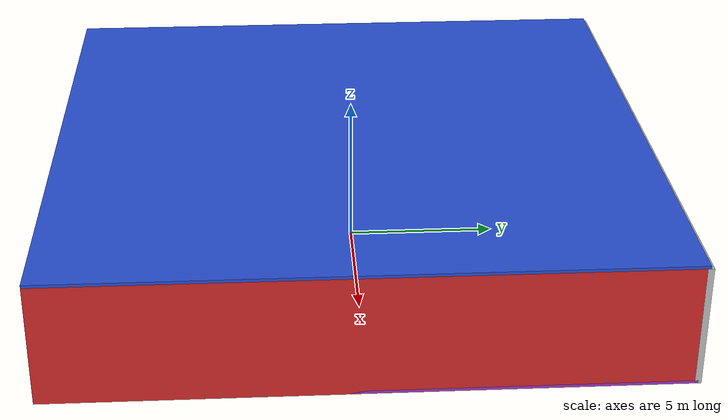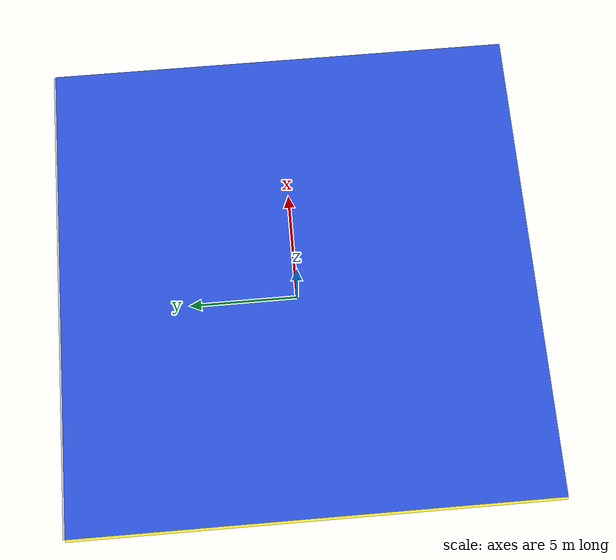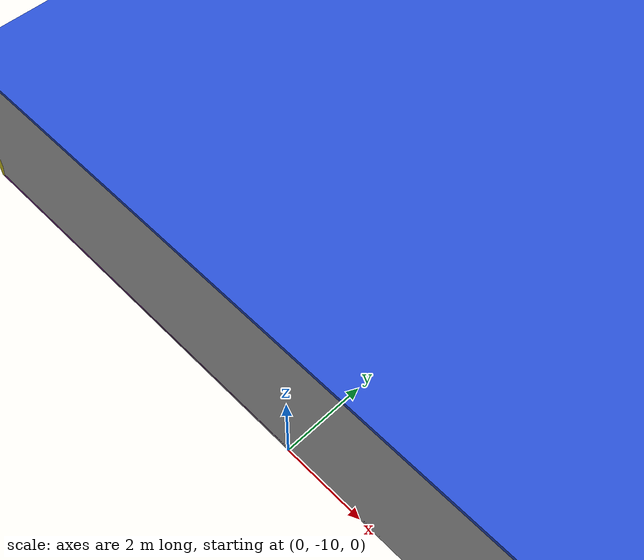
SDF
<sdf version="1.4">
 <world name="default">
  <physics type="ode">
   <max_step_size>0.001</max_step_size>
   <real_time_factor>1</real_time_factor>
   <real_time_update_rate>1000</real_time_update_rate>
   <gravity>0 0 -9.8</gravity>
  </physics>
  <scene><ambient>0.4 0.4 0.4 1</ambient><background>0.7 0.7 0.7 1</background><shadows>1</shadows></scene>
  <model name="Surrounding">
   <static>1</static>
   <link name="Ceiling">
    <collision name="Ceiling_Collision"><geometry><box><size>20 20 0.1</size></box></geometry></collision>
    <visual name="Ceiling_Visual">
     <geometry><box><size>20 20 0.1</size></box></geometry>
     <material>
      <script><uri>file://media/materials/scripts/gazebo.material</uri><name>Gazebo/Blue</name></script>
     </material>
    </visual>
    <pose>0 0 4.05 0 0 0</pose>
   </link>
   <link name="Wall_South">
    <collision name="Wall_South_Collision">
     <geometry><box><size>20 0 4</size></box></geometry>
     <pose>0 0 2 0 -0 0</pose>
    </collision>
    <visual name="Wall_South_Visual">
     <pose>0 0 2 0 -0 0</pose>
     <geometry><box><size>20 0 4</size></box></geometry>
     <material>
      <script><uri>file://media/materials/scripts/gazebo.material</uri><name>Gazebo/JointAnchor</name></script>
     </material>
    </visual>
    <velocity_decay><linear>0</linear><angular>0</angular></velocity_decay>
    <pose>0 -10 0 0 -0 0</pose>
   </link>
   <link name="Wall_East">
    <collision name="Wall_21_Collision">
     <geometry><box><size>20 0 4</size></box></geometry>
     <pose>0 0 2 0 -0 0</pose>
    </collision>
    <visual name="Wall_21_Visual">
     <pose>0 0 2 0 -0 0</pose>
     <geometry><box><size>20 0 4</size></box></geometry>
     <material>
      <script><uri>file://media/materials/scripts/gazebo.material</uri><name>Gazebo/Red</name></script>
     </material>
    </visual>
    <velocity_decay><linear>0</linear><angular>0</angular></velocity_decay>
    <pose>10 0 0 0 -0 1.5708</pose>
   </link>
   <link name="Wall_North">
    <collision name="Wall_22_Collision">
     <geometry><box><size>20 0.2 4</size></box></geometry>
     <pose>0 0 2 0 -0 0</pose>
    </collision>
    <visual name="Wall_22_Visual">
     <pose>0 0 2 0 -0 0</pose>
     <geometry><box><size>20 0.2 4</size></box></geometry>
     <material>
      <script><uri>file://media/materials/scripts/gazebo.material</uri><name>Gazebo/PioneerBody</name></script>
     </material>
    </visual>
    <velocity_decay><linear>0</linear><angular>0</angular></velocity_decay>
    <pose>0 10 0 0 -0 0</pose>
   </link>
   <link name="Wall_West">
    <collision name="Wall_23_Collision">
     <geometry><box><size>20 0.2 4</size></box></geometry>
     <pose>0 0 2 0 -0 0</pose>
    </collision>
    <visual name="Wall_23_Visual">
     <pose>0 0 2 0 -0 0</pose>
     <geometry><box><size>20 0.2 4</size></box></geometry>
     <material>
      <script><uri>file://media/materials/scripts/gazebo.material</uri><name>Gazebo/YellowGlow</name></script>
     </material>
    </visual>
    <velocity_decay><linear>0</linear><angular>0</angular></velocity_decay>
    <pose>-10 0 0 0 0 -1.5708</pose>
   </link>
   <link name="Ground_link">
    <collision name="collision">
     <pose>0 0 .05 0 -0 0</pose>
     <geometry><box><size>20 20 0.1</size></box></geometry>
    </collision>
    <visual name="visual">
     <pose>0 0 .05 0 -0 0</pose>
     <geometry><box><size>20 20 0.1</size></box></geometry>
     <material>
      <script><uri>file://media/materials/scripts/gazebo.material</uri><name>Gazebo/Purple</name></script>
     </material>
    </visual>
   </link>
   <static>1</static>
  </model>
  <spherical_coordinates>
   <surface_model>EARTH_WGS84</surface_model>
   <latitude_deg>0</latitude_deg>
   <longitude_deg>0</longitude_deg>
   <elevation>0</elevation>
   <heading_deg>0</heading_deg>
  </spherical_coordinates>
  <light name="lightball_0" type="diffuse">
   <diffuse>0.8 0.8 0.8 1</diffuse>
   <specular>0.2 0.2 0.2 1</specular>
   <attenuation>
    <range>100</range>
    <constant>0.7</constant>
    <linear>0.01</linear>
    <quadratic>0.001</quadratic>
   </attenuation>
   <direction>-0.5 0.1 -0.9</direction>
   <pose>3.80107168451 -0.162048407361 1.80444969715 0 0 0</pose>
  </light>
  <light name="lightball_1" type="diffuse">
   <diffuse>0.8 0.8 0.8 1</diffuse>
   <specular>0.2 0.2 0.2 1</specular>
   <attenuation>
    <range>100</range>
    <constant>0.7</constant>
    <linear>0.01</linear>
    <quadratic>0.001</quadratic>
   </attenuation>
   <direction>-0.5 0.1 -0.9</direction>
   <pose>-5.61555441083 -4.20380139248 0.566361767636 0 0 0</pose>
  </light>
  <include>
   <uri>model://textured_shapes</uri>
   <pose>-4.91942808899 -4.87937796677 0 0 0 0.987253208736</pose>
  </include>
  <include><uri>model://cabinet</uri><pose>-3.6617627007 8.68471054367 0 0 0 1.60837873253</pose></include>
  <include><uri>model://cabinet</uri><pose>0.350792884898 -7.4852097368 0 0 0 0.663055645564</pose></include>
  <include><uri>model://cabinet</uri><pose>2.07051878605 -3.70308493716 0 0 0 2.64373936656</pose></include>
  <include><uri>model://cabinet</uri><pose>1.20393809069 1.53283652442 0 0 0 1.9765526274</pose></include>
  <include><uri>model://cabinet</uri><pose>3.99951743458 4.52972015411 0 0 0 2.00726174526</pose></include>
  <include>
   <uri>model://construction_cone</uri>
   <pose>7.79765882611 6.83352081956 0 0 0 1.9668242456</pose>
  </include>
 </world>
</sdf>

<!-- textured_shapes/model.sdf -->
<sdf version="1.6">
  <model name="textured_shapes">
    <pose>0 0 0.5 0 0 0</pose>
    <link name="box">
      <pose>0 -1.5 0 0 0 0</pose>
      <collision name="collision">
        <geometry>
          <box>
            <size>1 1 1</size>
          </box>
        </geometry>
      </collision>
      <visual name="visual">
        <geometry>
          <box>
            <size>1 1 1</size>
          </box>
        </geometry>
        <material>
          <script>
            <uri>model://../model_source/models/textured_shapes/materials/scripts</uri>
            <uri>model://../model_source/models/textured_shapes/materials/textures</uri>
            <name>TexturedShape/Squares</name>
          </script>
        </material>
      </visual>
    </link>
    <link name="sphere">
      <collision name="collision">
        <geometry>
          <sphere>
            <radius>0.5</radius>
          </sphere>
        </geometry>
      </collision>
      <visual name="visual">
        <geometry>
          <sphere>
            <radius>0.5</radius>
          </sphere>
        </geometry>
        <material>
          <script>
            <uri>model://../model_source/models/textured_shapes/materials/scripts</uri>
            <uri>model://../model_source/models/textured_shapes/materials/textures</uri>
            <name>TexturedShape/Squares</name>
          </script>
        </material>
      </visual>
    </link>
    <link name="cylinder">
      <pose>0 1.5 0 0 0 0</pose>
      <collision name="collision">
        <geometry>
          <cylinder>
            <radius>0.5</radius>
            <length>1</length>
          </cylinder>
        </geometry>
      </collision>
      <visual name="visual">
        <geometry>
          <cylinder>
            <radius>0.5</radius>
            <length>1</length>
          </cylinder>
        </geometry>
        <material>
          <script>
            <uri>model://../model_source/models/textured_shapes/materials/scripts</uri>
            <uri>model://../model_source/models/textured_shapes/materials/textures</uri>
            <name>TexturedShape/Squares</name>
          </script>
        </material>
      </visual>
    </link>
  </model>
</sdf>

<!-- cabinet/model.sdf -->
<sdf version="1.5">
  <model name="cabinet">
    <static>true</static>
    <link name="cabinet_bottom_plate">
      <inertial>
        <pose>0 0 -1 0 0 0</pose>
        <inertia>
          <ixx>2.050000</ixx>
          <ixy>0</ixy>
          <ixz>0</ixz>
          <iyy>2.050000</iyy>
          <iyz>0</iyz>
          <izz>2.050000</izz>
        </inertia>
        <mass>25.000000</mass>
      </inertial>
      <collision name="cabinet_bottom_plate_geom">
        <pose>0 0 0.010000 0 0 0</pose>
        <geometry>
          <box>
            <size>0.450000 0.450000 0.020000</size>
          </box>
        </geometry>
      </collision>
      <visual name="cabinet_bottom_plate_geom_visual">
        <pose>0 0 0.010000 0 0 0</pose>
        <geometry>
          <box>
            <size>0.450000 0.450000 0.020000</size>
          </box>
        </geometry>
        <material>
          <script>
            <uri>model://media/materials/scripts/gazebo.material</uri>
            <name>Gazebo/Wood</name>
          </script>
        </material>
      </visual>
      <collision name="cabinet_bottom_plate_geom_cabinet_back_plate">
        <pose>0.235000 0 0.510000 0 0 0</pose>
        <geometry>
          <box>
            <size>0.020000 0.450000 1.020000</size>
          </box>
        </geometry>
      </collision>
      <visual name="cabinet_bottom_plate_geom_cabinet_back_plate_visual">
        <pose>0.235000 0 0.510000 0 0 0</pose>
        <geometry>
          <box>
            <size>0.020000 0.450000 1.020000</size>
          </box>
        </geometry>
        <material>
          <script>
            <uri>model://media/materials/scripts/gazebo.material</uri>
            <name>Gazebo/Wood</name>
          </script>
        </material>
      </visual>
      <collision name="cabinet_bottom_plate_geom_cabinet_left_plate">
        <pose>0 0.235000 0.510000 0 0 0</pose>
        <geometry>
          <box>
            <size>0.450000 0.020000 1.020000</size>
          </box>
        </geometry>
      </collision>
      <visual name="cabinet_bottom_plate_geom_cabinet_left_plate_visual">
        <pose>0 0.235000 0.510000 0 0 0</pose>
        <geometry>
          <box>
            <size>0.450000 0.020000 1.020000</size>
          </box>
        </geometry>
        <material>
          <script>
            <uri>model://media/materials/scripts/gazebo.material</uri>
            <name>Gazebo/Wood</name>
          </script>
        </material>
      </visual>
      <collision name="cabinet_bottom_plate_geom_cabinet_middle_plate">
        <pose>0 0 0.510000 0 0 0</pose>
        <geometry>
          <box>
            <size>0.450000 0.450000 0.020000</size>
          </box>
        </geometry>
      </collision>
      <visual name="cabinet_bottom_plate_geom_cabinet_middle_plate_visual">
        <pose>0 0 0.510000 0 0 0</pose>
        <geometry>
          <box>
            <size>0.450000 0.450000 0.020000</size>
          </box>
        </geometry>
        <material>
          <script>
            <uri>model://media/materials/scripts/gazebo.material</uri>
            <name>Gazebo/Wood</name>
          </script>
        </material>
      </visual>
      <collision name="cabinet_bottom_plate_geom_cabinet_right_plate">
        <pose>0 -0.235000 0.510000 0 0 0</pose>
        <geometry>
          <box>
            <size>0.450000 0.020000 1.020000</size>
          </box>
        </geometry>
      </collision>
      <visual name="cabinet_bottom_plate_geom_cabinet_right_plate_visual">
        <pose>0 -0.235000 0.510000 0 0 0</pose>
        <geometry>
          <box>
            <size>0.450000 0.020000 1.020000</size>
          </box>
        </geometry>
        <material>
          <script>
            <uri>model://media/materials/scripts/gazebo.material</uri>
            <name>Gazebo/Wood</name>
          </script>
        </material>
      </visual>
      <collision name="cabinet_bottom_plate_geom_cabinet_top_plate">
        <pose>0 0 1.010000 0 0 0</pose>
        <geometry>
          <box>
            <size>0.450000 0.450000 0.020000</size>
          </box>
        </geometry>
      </collision>
      <visual name="cabinet_bottom_plate_geom_cabinet_top_plate_visual">
        <pose>0 0 1.010000 0 0 0</pose>
        <geometry>
          <box>
            <size>0.450000 0.450000 0.020000</size>
          </box>
        </geometry>
        <material>
          <script>
            <uri>model://media/materials/scripts/gazebo.material</uri>
            <name>Gazebo/Wood</name>
          </script>
        </material>
      </visual>
    </link>
  </model>
</sdf>

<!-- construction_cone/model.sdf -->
<sdf version="1.5">
  <model name="Construction Cone">
    <link name="link">
      <collision name="collision">
        <geometry>
          <mesh>
            <scale>10 10 10</scale>
            <uri>file://isr-testbed/construction_cone/meshes/construction_cone.dae</uri>
          </mesh>
        </geometry>
      </collision>
      <visual name="visual">
        <geometry>
          <mesh>
            <scale>10 10 10</scale>
            <uri>file://isr-testbed/construction_cone/meshes/construction_cone.dae</uri>
          </mesh>
        </geometry>
      </visual>
    </link>
  </model>
</sdf>
